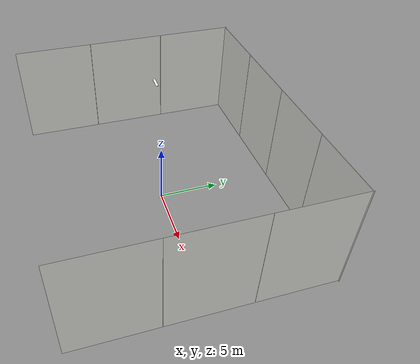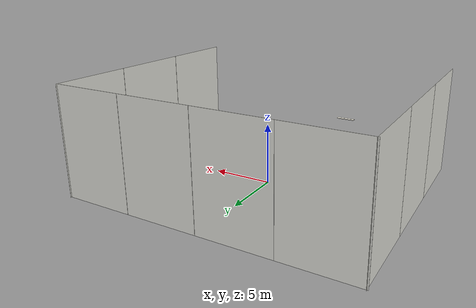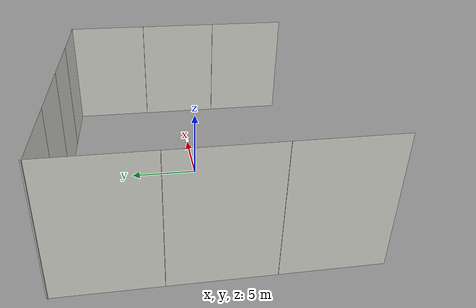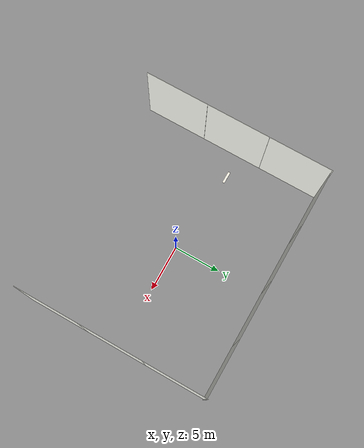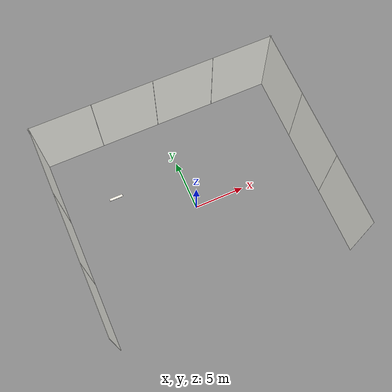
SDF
<sdf version="1.8">
 <world name="warehouse_v2">
  <model name="lamp_glow_1">
   <static>true</static>
   <pose>-7.05 1.50 6.97 0 0 0</pose>
   <link name="link">
    <visual name="visual">
     <geometry><box><size>1.20 0.22 0.03</size></box></geometry>
     <material>
      <ambient>1 0.98 0.92 1</ambient>
      <diffuse>1 0.98 0.92 1</diffuse>
      <specular>0.2 0.2 0.2 1</specular>
      <emissive>1 0.97 0.90 1</emissive>
     </material>
     <cast_shadows>false</cast_shadows>
    </visual>
   </link>
  </model>
  <model name="ground_plane">
   <static>true</static>
   <link name="link">
    <collision name="collision">
     <geometry><plane><normal>0 0 1</normal><size>24.5 20.5</size></plane></geometry>
    </collision>
   </link>
  </model>
  <model name="warehouse_v2_wall_lining">
   <static>true</static>
   <link name="panel_n_0">
    <pose>-9.000 9.890 4.500 0 0 0.0000</pose>
    <visual name="visual">
     <geometry><box><size>5.980 0.020 8.980</size></box></geometry>
     <material>
      <ambient>0.97 0.97 0.94 1</ambient>
      <diffuse>0.97 0.97 0.94 1</diffuse>
      <specular>0.08 0.08 0.08 1</specular>
      <pbr>
       <metal>
        <albedo_map>model://warehouse_pbr/materials/textures/concrete_albedo.png</albedo_map>
        <normal_map>model://warehouse_pbr/materials/textures/concrete_normal.png</normal_map>
        <roughness_map>model://warehouse_pbr/materials/textures/concrete_roughness.png</roughness_map>
        <metalness>0.0</metalness>
       </metal>
      </pbr>
     </material>
    </visual>
   </link>
   <link name="panel_n_1">
    <pose>-3.000 9.890 4.500 0 0 0.0000</pose>
    <visual name="visual">
     <geometry><box><size>5.980 0.020 8.980</size></box></geometry>
     <material>
      <ambient>0.97 0.97 0.94 1</ambient>
      <diffuse>0.97 0.97 0.94 1</diffuse>
      <specular>0.08 0.08 0.08 1</specular>
      <pbr>
       <metal>
        <albedo_map>model://warehouse_pbr/materials/textures/concrete_albedo.png</albedo_map>
        <normal_map>model://warehouse_pbr/materials/textures/concrete_normal.png</normal_map>
        <roughness_map>model://warehouse_pbr/materials/textures/concrete_roughness.png</roughness_map>
        <metalness>0.0</metalness>
       </metal>
      </pbr>
     </material>
    </visual>
   </link>
   <link name="panel_n_2">
    <pose>3.000 9.890 4.500 0 0 0.0000</pose>
    <visual name="visual">
     <geometry><box><size>5.980 0.020 8.980</size></box></geometry>
     <material>
      <ambient>0.97 0.97 0.94 1</ambient>
      <diffuse>0.97 0.97 0.94 1</diffuse>
      <specular>0.08 0.08 0.08 1</specular>
      <pbr>
       <metal>
        <albedo_map>model://warehouse_pbr/materials/textures/concrete_albedo.png</albedo_map>
        <normal_map>model://warehouse_pbr/materials/textures/concrete_normal.png</normal_map>
        <roughness_map>model://warehouse_pbr/materials/textures/concrete_roughness.png</roughness_map>
        <metalness>0.0</metalness>
       </metal>
      </pbr>
     </material>
    </visual>
   </link>
   <link name="panel_n_3">
    <pose>9.000 9.890 4.500 0 0 0.0000</pose>
    <visual name="visual">
     <geometry><box><size>5.980 0.020 8.980</size></box></geometry>
     <material>
      <ambient>0.97 0.97 0.94 1</ambient>
      <diffuse>0.97 0.97 0.94 1</diffuse>
      <specular>0.08 0.08 0.08 1</specular>
      <pbr>
       <metal>
        <albedo_map>model://warehouse_pbr/materials/textures/concrete_albedo.png</albedo_map>
        <normal_map>model://warehouse_pbr/materials/textures/concrete_normal.png</normal_map>
        <roughness_map>model://warehouse_pbr/materials/textures/concrete_roughness.png</roughness_map>
        <metalness>0.0</metalness>
       </metal>
      </pbr>
     </material>
    </visual>
   </link>
   <link name="panel_w_0">
    <pose>-11.890 -6.667 4.500 0 0 0.0000</pose>
    <visual name="visual">
     <geometry><box><size>0.020 6.647 8.980</size></box></geometry>
     <material>
      <ambient>0.97 0.97 0.94 1</ambient>
      <diffuse>0.97 0.97 0.94 1</diffuse>
      <specular>0.08 0.08 0.08 1</specular>
      <pbr>
       <metal>
        <albedo_map>model://warehouse_pbr/materials/textures/concrete_albedo.png</albedo_map>
        <normal_map>model://warehouse_pbr/materials/textures/concrete_normal.png</normal_map>
        <roughness_map>model://warehouse_pbr/materials/textures/concrete_roughness.png</roughness_map>
        <metalness>0.0</metalness>
       </metal>
      </pbr>
     </material>
    </visual>
   </link>
   <link name="panel_e_0">
    <pose>11.890 -6.667 4.500 0 0 0.0000</pose>
    <visual name="visual">
     <geometry><box><size>0.020 6.647 8.980</size></box></geometry>
     <material>
      <ambient>0.97 0.97 0.94 1</ambient>
      <diffuse>0.97 0.97 0.94 1</diffuse>
      <specular>0.08 0.08 0.08 1</specular>
      <pbr>
       <metal>
        <albedo_map>model://warehouse_pbr/materials/textures/concrete_albedo.png</albedo_map>
        <normal_map>model://warehouse_pbr/materials/textures/concrete_normal.png</normal_map>
        <roughness_map>model://warehouse_pbr/materials/textures/concrete_roughness.png</roughness_map>
        <metalness>0.0</metalness>
       </metal>
      </pbr>
     </material>
    </visual>
   </link>
   <link name="panel_w_1">
    <pose>-11.890 0.000 4.500 0 0 0.0000</pose>
    <visual name="visual">
     <geometry><box><size>0.020 6.647 8.980</size></box></geometry>
     <material>
      <ambient>0.97 0.97 0.94 1</ambient>
      <diffuse>0.97 0.97 0.94 1</diffuse>
      <specular>0.08 0.08 0.08 1</specular>
      <pbr>
       <metal>
        <albedo_map>model://warehouse_pbr/materials/textures/concrete_albedo.png</albedo_map>
        <normal_map>model://warehouse_pbr/materials/textures/concrete_normal.png</normal_map>
        <roughness_map>model://warehouse_pbr/materials/textures/concrete_roughness.png</roughness_map>
        <metalness>0.0</metalness>
       </metal>
      </pbr>
     </material>
    </visual>
   </link>
   <link name="panel_e_1">
    <pose>11.890 0.000 4.500 0 0 0.0000</pose>
    <visual name="visual">
     <geometry><box><size>0.020 6.647 8.980</size></box></geometry>
     <material>
      <ambient>0.97 0.97 0.94 1</ambient>
      <diffuse>0.97 0.97 0.94 1</diffuse>
      <specular>0.08 0.08 0.08 1</specular>
      <pbr>
       <metal>
        <albedo_map>model://warehouse_pbr/materials/textures/concrete_albedo.png</albedo_map>
        <normal_map>model://warehouse_pbr/materials/textures/concrete_normal.png</normal_map>
        <roughness_map>model://warehouse_pbr/materials/textures/concrete_roughness.png</roughness_map>
        <metalness>0.0</metalness>
       </metal>
      </pbr>
     </material>
    </visual>
   </link>
   <link name="panel_w_2">
    <pose>-11.890 6.667 4.500 0 0 0.0000</pose>
    <visual name="visual">
     <geometry><box><size>0.020 6.647 8.980</size></box></geometry>
     <material>
      <ambient>0.97 0.97 0.94 1</ambient>
      <diffuse>0.97 0.97 0.94 1</diffuse>
      <specular>0.08 0.08 0.08 1</specular>
      <pbr>
       <metal>
        <albedo_map>model://warehouse_pbr/materials/textures/concrete_albedo.png</albedo_map>
        <normal_map>model://warehouse_pbr/materials/textures/concrete_normal.png</normal_map>
        <roughness_map>model://warehouse_pbr/materials/textures/concrete_roughness.png</roughness_map>
        <metalness>0.0</metalness>
       </metal>
      </pbr>
     </material>
    </visual>
   </link>
   <link name="panel_e_2">
    <pose>11.890 6.667 4.500 0 0 0.0000</pose>
    <visual name="visual">
     <geometry><box><size>0.020 6.647 8.980</size></box></geometry>
     <material>
      <ambient>0.97 0.97 0.94 1</ambient>
      <diffuse>0.97 0.97 0.94 1</diffuse>
      <specular>0.08 0.08 0.08 1</specular>
      <pbr>
       <metal>
        <albedo_map>model://warehouse_pbr/materials/textures/concrete_albedo.png</albedo_map>
        <normal_map>model://warehouse_pbr/materials/textures/concrete_normal.png</normal_map>
        <roughness_map>model://warehouse_pbr/materials/textures/concrete_roughness.png</roughness_map>
        <metalness>0.0</metalness>
       </metal>
      </pbr>
     </material>
    </visual>
   </link>
  </model>
 </world>
</sdf>
